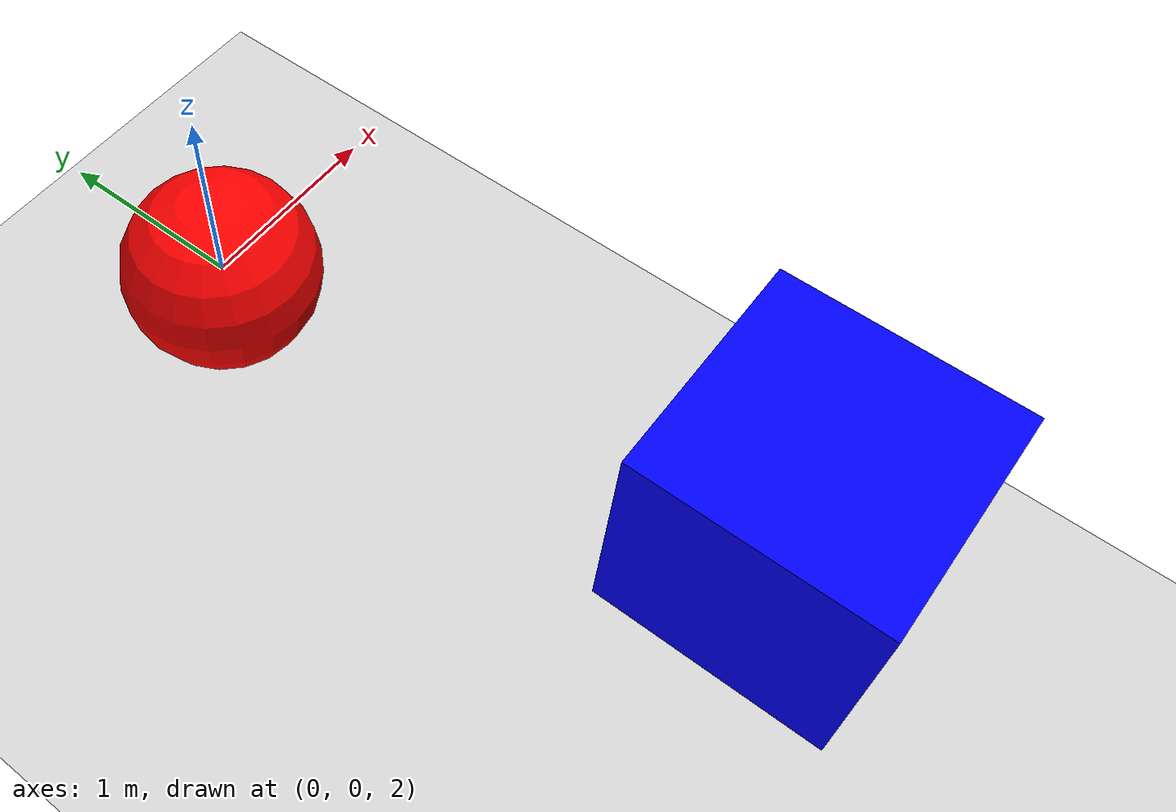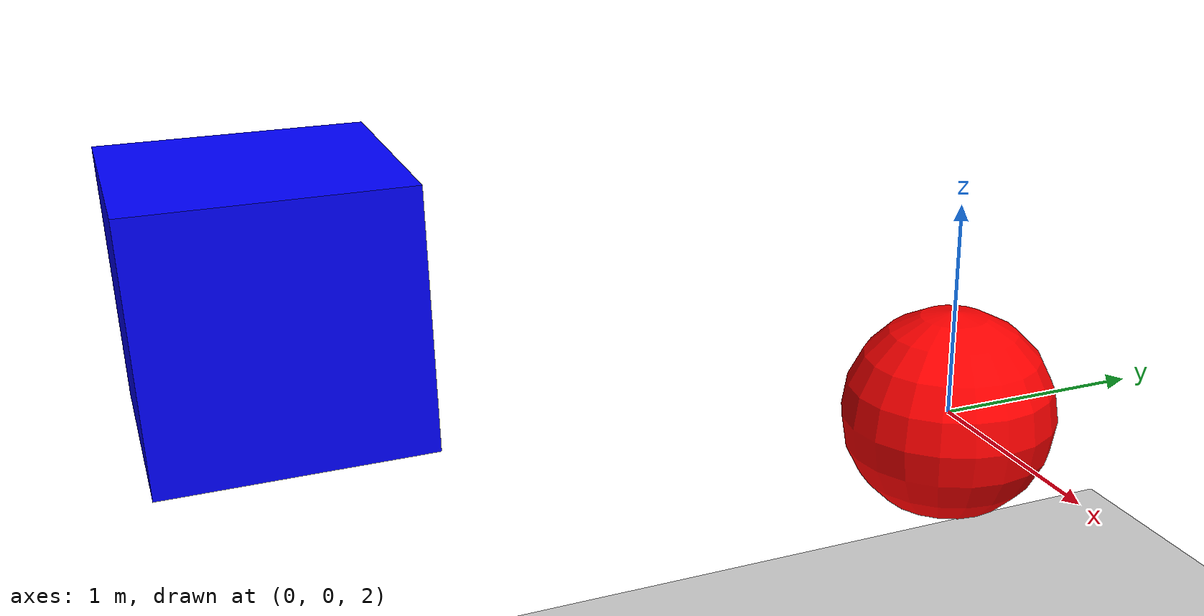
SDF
<?xml version="1.0" ?>
<sdf version="1.10">
    <world name="bucket_and_pale">
        <physics name="1ms" type="ignored">
            <max_step_size>0.001</max_step_size>
            <real_time_factor>1.0</real_time_factor>
        </physics>
        <plugin
            filename="gz-sim-physics-system"
            name="gz::sim::systems::Physics">
        </plugin>
        <plugin
            filename="gz-sim-user-commands-system"
            name="gz::sim::systems::UserCommands">
        </plugin>
        <plugin
            filename="gz-sim-scene-broadcaster-system"
            name="gz::sim::systems::SceneBroadcaster">
        </plugin>

        <light type="directional" name="sun">
            <cast_shadows>true</cast_shadows>
            <pose>0 0 10 0 0 0</pose>
            <diffuse>0.8 0.8 0.8 1</diffuse>
            <specular>0.2 0.2 0.2 1</specular>
            <attenuation>
                <range>1000</range>
                <constant>0.9</constant>
                <linear>0.01</linear>
                <quadratic>0.001</quadratic>
            </attenuation>
            <direction>-0.5 0.1 -0.9</direction>
        </light>

        <model name="ground_plane">
            <static>true</static>
            <link name="link">
                <collision name="collision">
                <geometry>
                    <plane>
                    <normal>0 0 1</normal>
                    </plane>
                </geometry>
                </collision>
                <visual name="visual">
                <geometry>
                    <plane>
                    <normal>0 0 1</normal>
                    <size>100 100</size>
                    </plane>
                </geometry>
                <material>
                    <ambient>0.8 0.8 0.8 1</ambient>
                    <diffuse>0.8 0.8 0.8 1</diffuse>
                    <specular>0.8 0.8 0.8 1</specular>
                </material>
                </visual>
            </link>
        </model>

        <!--Pail (only dropped with h1 data)-->
        <model name='pail'>
            <pose relative_to='world'>0 -3.0 3.0 0 0 0</pose>
            <link name='cube'>
                <pose relative_to='__model__'>0 0 0 0 0 0</pose>
                <visual name='visual'>
                    <geometry>
                        <box>
                            <size>1.0 1.0 1.0</size>
                        </box>
                    </geometry>
                    <material>
                        <ambient>0.0 0.0 1.0 1</ambient>
                        <diffuse>0.0 0.0 1.0 1</diffuse>
                        <specular>0.0 0.0 1.0 1</specular>
                    </material>
                </visual>

                <collision name='collision'>
                    <geometry>
                        <box>
                            <size>1.0 1.0 1.0</size>
                        </box>
                    </geometry>
                </collision>
            </link>
        </model>

        <model name='ball'>
            <pose>0 0 2.0 0 0 0</pose>

            <initial_velocity>0 -1.0 1.0 0 0 0</initial_velocity>

            <link name='sphere'>
                <visual name='visual'>
                    <geometry>
                        <sphere>
                            <radius>0.5</radius>
                        </sphere>
                    </geometry>
                    <material>
                        <ambient>1 0 0 1</ambient> <!-- Red RGBA color -->
                        <diffuse>1 0 0 1</diffuse>
                    </material>
                </visual>

                <collision name='collision'>
                    <geometry>
                        <sphere>
                            <radius>0.5</radius>
                        </sphere>
                    </geometry>
                </collision>
            </link>
        </model>
    </world>
</sdf>
